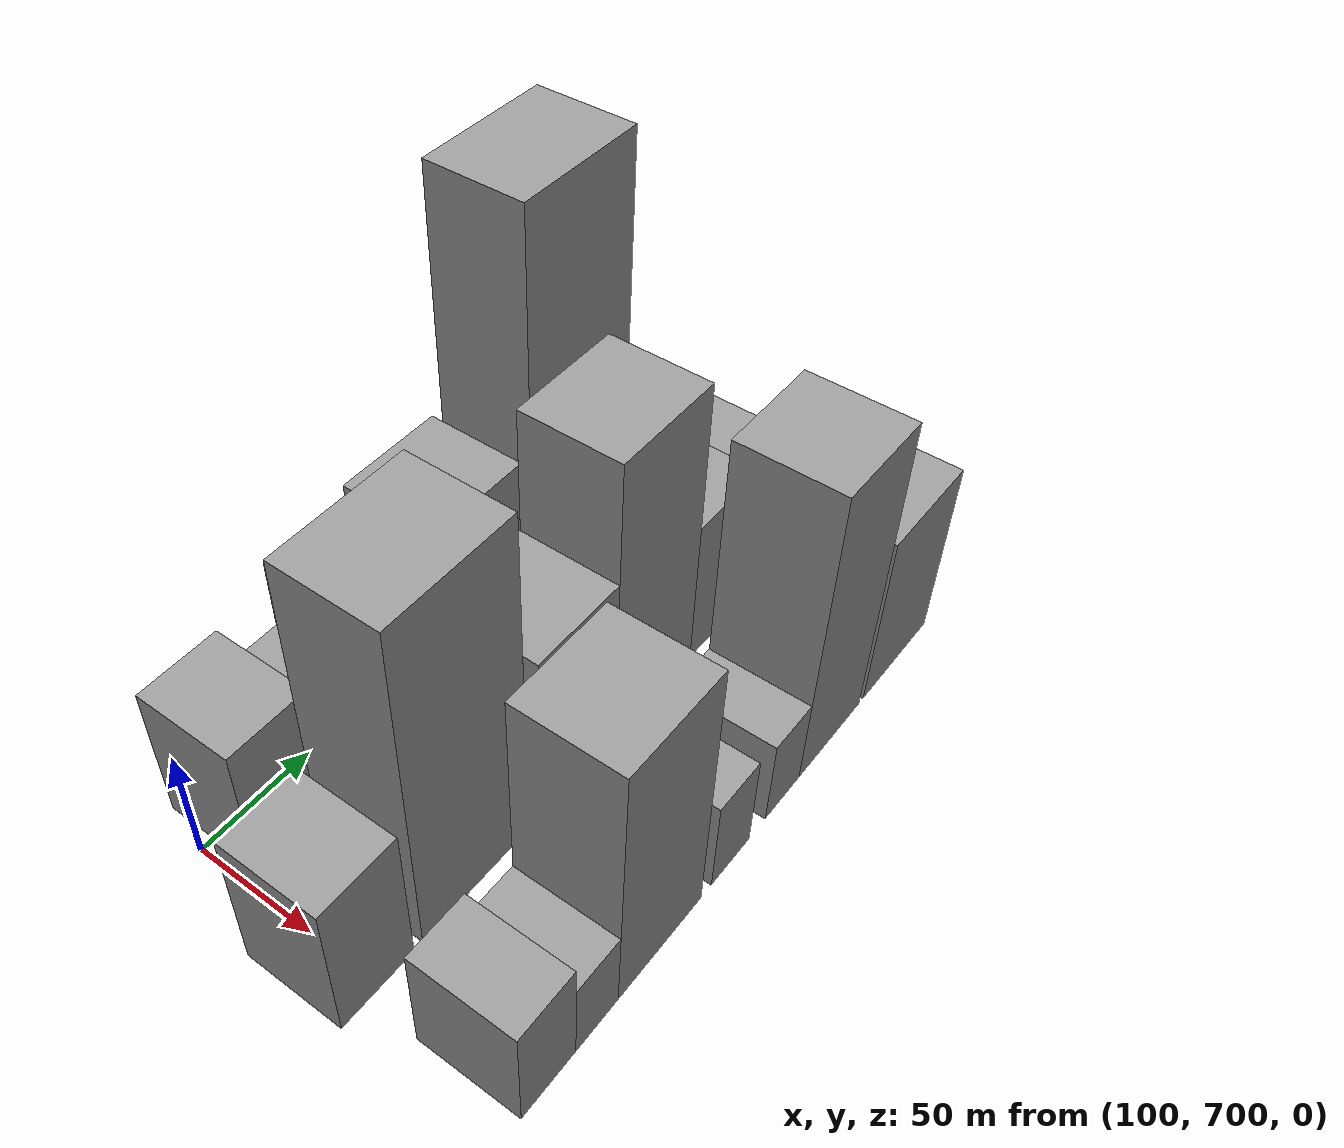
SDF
<sdf version="1.6">
 <world name="default">
  <model name="building_47">
   <static>1</static>
   <pose>100.0000 722.3994 0 0.000000 0.000000 0.000000</pose>
   <link name="link">
    <pose>0 0 30.00 0 0 0</pose>
    <collision name="collision"><geometry><box><size>40.0000 33.6238 60.0000</size></box></geometry></collision>
    <visual name="visual">
     <cast_shadows>0</cast_shadows>
     <geometry><box><size>40.0000 33.6238 60.0000</size></box></geometry>
     <material>
      <script>
       <uri>model://grey_wall/materials/scripts</uri>
       <uri>model://grey_wall/materials/textures</uri>
       <name>vrc/grey_wall</name>
      </script>
     </material>
    </visual>
   </link>
  </model>
  <model name="building_48">
   <static>1</static>
   <pose>100.0000 750.7657 0 0.000000 0.000000 0.000000</pose>
   <link name="link">
    <pose>0 0 21.00 0 0 0</pose>
    <collision name="collision"><geometry><box><size>40.0000 23.1088 42.0000</size></box></geometry></collision>
    <visual name="visual">
     <cast_shadows>0</cast_shadows>
     <geometry><box><size>40.0000 23.1088 42.0000</size></box></geometry>
     <material>
      <script>
       <uri>model://grey_wall/materials/scripts</uri>
       <uri>model://grey_wall/materials/textures</uri>
       <name>vrc/grey_wall</name>
      </script>
     </material>
    </visual>
   </link>
  </model>
  <model name="building_49">
   <static>1</static>
   <pose>100.0000 781.3280 0 0.000000 0.000000 0.000000</pose>
   <link name="link">
    <pose>0 0 36.00 0 0 0</pose>
    <collision name="collision"><geometry><box><size>40.0000 38.0159 72.0000</size></box></geometry></collision>
    <visual name="visual">
     <cast_shadows>0</cast_shadows>
     <geometry><box><size>40.0000 38.0159 72.0000</size></box></geometry>
     <material>
      <script>
       <uri>model://grey_wall/materials/scripts</uri>
       <uri>model://grey_wall/materials/textures</uri>
       <name>vrc/grey_wall</name>
      </script>
     </material>
    </visual>
   </link>
  </model>
  <model name="building_50">
   <static>1</static>
   <pose>100.0000 822.7984 0 0.000000 0.000000 0.000000</pose>
   <link name="link">
    <pose>0 0 39.00 0 0 0</pose>
    <collision name="collision"><geometry><box><size>40.0000 44.9249 78.0000</size></box></geometry></collision>
    <visual name="visual">
     <cast_shadows>0</cast_shadows>
     <geometry><box><size>40.0000 44.9249 78.0000</size></box></geometry>
     <material>
      <script>
       <uri>model://grey_wall/materials/scripts</uri>
       <uri>model://grey_wall/materials/textures</uri>
       <name>vrc/grey_wall</name>
      </script>
     </material>
    </visual>
   </link>
  </model>
  <model name="building_51">
   <static>1</static>
   <pose>100.0000 878.3685 0 0.000000 0.000000 0.000000</pose>
   <link name="link">
    <pose>0 0 88.50 0 0 0</pose>
    <collision name="collision"><geometry><box><size>40.0000 56.2153 177.0000</size></box></geometry></collision>
    <visual name="visual">
     <cast_shadows>0</cast_shadows>
     <geometry><box><size>40.0000 56.2153 177.0000</size></box></geometry>
     <material>
      <script>
       <uri>model://grey_wall/materials/scripts</uri>
       <uri>model://grey_wall/materials/textures</uri>
       <name>vrc/grey_wall</name>
      </script>
     </material>
    </visual>
   </link>
  </model>
  <model name="building_52">
   <static>1</static>
   <pose>100.0000 930.2942 0 0.000000 0.000000 0.000000</pose>
   <link name="link">
    <pose>0 0 25.50 0 0 0</pose>
    <collision name="collision"><geometry><box><size>40.0000 27.6361 51.0000</size></box></geometry></collision>
    <visual name="visual">
     <cast_shadows>0</cast_shadows>
     <geometry><box><size>40.0000 27.6361 51.0000</size></box></geometry>
     <material>
      <script>
       <uri>model://grey_wall/materials/scripts</uri>
       <uri>model://grey_wall/materials/textures</uri>
       <name>vrc/grey_wall</name>
      </script>
     </material>
    </visual>
   </link>
  </model>
  <model name="building_97">
   <static>1</static>
   <pose>160.0000 698.8707 0 0.000000 0.000000 0.000000</pose>
   <link name="link">
    <pose>0 0 31.50 0 0 0</pose>
    <collision name="collision"><geometry><box><size>40.0000 32.6358 63.0000</size></box></geometry></collision>
    <visual name="visual">
     <cast_shadows>0</cast_shadows>
     <geometry><box><size>40.0000 32.6358 63.0000</size></box></geometry>
     <material>
      <script>
       <uri>model://grey_wall/materials/scripts</uri>
       <uri>model://grey_wall/materials/textures</uri>
       <name>vrc/grey_wall</name>
      </script>
     </material>
    </visual>
   </link>
  </model>
  <model name="building_98">
   <static>1</static>
   <pose>160.0000 745.6405 0 0.000000 0.000000 0.000000</pose>
   <link name="link">
    <pose>0 0 73.50 0 0 0</pose>
    <collision name="collision"><geometry><box><size>40.0000 52.9038 147.0000</size></box></geometry></collision>
    <visual name="visual">
     <cast_shadows>0</cast_shadows>
     <geometry><box><size>40.0000 52.9038 147.0000</size></box></geometry>
     <material>
      <script>
       <uri>model://grey_wall/materials/scripts</uri>
       <uri>model://grey_wall/materials/textures</uri>
       <name>vrc/grey_wall</name>
      </script>
     </material>
    </visual>
   </link>
  </model>
  <model name="building_99">
   <static>1</static>
   <pose>160.0000 799.5463 0 0.000000 0.000000 0.000000</pose>
   <link name="link">
    <pose>0 0 39.00 0 0 0</pose>
    <collision name="collision"><geometry><box><size>40.0000 40.9078 78.0000</size></box></geometry></collision>
    <visual name="visual">
     <cast_shadows>0</cast_shadows>
     <geometry><box><size>40.0000 40.9078 78.0000</size></box></geometry>
     <material>
      <script>
       <uri>model://grey_wall/materials/scripts</uri>
       <uri>model://grey_wall/materials/textures</uri>
       <name>vrc/grey_wall</name>
      </script>
     </material>
    </visual>
   </link>
  </model>
  <model name="building_100">
   <static>1</static>
   <pose>160.0000 843.2562 0 0.000000 0.000000 0.000000</pose>
   <link name="link">
    <pose>0 0 64.50 0 0 0</pose>
    <collision name="collision"><geometry><box><size>40.0000 46.5119 129.0000</size></box></geometry></collision>
    <visual name="visual">
     <cast_shadows>0</cast_shadows>
     <geometry><box><size>40.0000 46.5119 129.0000</size></box></geometry>
     <material>
      <script>
       <uri>model://grey_wall/materials/scripts</uri>
       <uri>model://grey_wall/materials/textures</uri>
       <name>vrc/grey_wall</name>
      </script>
     </material>
    </visual>
   </link>
  </model>
  <model name="building_101">
   <static>1</static>
   <pose>160.0000 884.9245 0 0.000000 0.000000 0.000000</pose>
   <link name="link">
    <pose>0 0 33.00 0 0 0</pose>
    <collision name="collision"><geometry><box><size>40.0000 36.8247 66.0000</size></box></geometry></collision>
    <visual name="visual">
     <cast_shadows>0</cast_shadows>
     <geometry><box><size>40.0000 36.8247 66.0000</size></box></geometry>
     <material>
      <script>
       <uri>model://grey_wall/materials/scripts</uri>
       <uri>model://grey_wall/materials/textures</uri>
       <name>vrc/grey_wall</name>
      </script>
     </material>
    </visual>
   </link>
  </model>
  <model name="building_102">
   <static>1</static>
   <pose>160.0000 918.4425 0 0.000000 0.000000 0.000000</pose>
   <link name="link">
    <pose>0 0 30.00 0 0 0</pose>
    <collision name="collision"><geometry><box><size>40.0000 30.2114 60.0000</size></box></geometry></collision>
    <visual name="visual">
     <cast_shadows>0</cast_shadows>
     <geometry><box><size>40.0000 30.2114 60.0000</size></box></geometry>
     <material>
      <script>
       <uri>model://grey_wall/materials/scripts</uri>
       <uri>model://grey_wall/materials/textures</uri>
       <name>vrc/grey_wall</name>
      </script>
     </material>
    </visual>
   </link>
  </model>
  <model name="building_103">
   <static>1</static>
   <pose>160.0000 937.4307 0 0.000000 0.000000 0.000000</pose>
   <link name="link">
    <pose>0 0 9.00 0 0 0</pose>
    <collision name="collision"><geometry><box><size>40.0000 7.7650 18.0000</size></box></geometry></collision>
    <visual name="visual">
     <cast_shadows>0</cast_shadows>
     <geometry><box><size>40.0000 7.7650 18.0000</size></box></geometry>
     <material>
      <script>
       <uri>model://grey_wall/materials/scripts</uri>
       <uri>model://grey_wall/materials/textures</uri>
       <name>vrc/grey_wall</name>
      </script>
     </material>
    </visual>
   </link>
  </model>
  <model name="building_156">
   <static>1</static>
   <pose>220.0000 706.8639 0 0.000000 0.000000 0.000000</pose>
   <link name="link">
    <pose>0 0 24.00 0 0 0</pose>
    <collision name="collision"><geometry><box><size>40.0000 25.7475 48.0000</size></box></geometry></collision>
    <visual name="visual">
     <cast_shadows>0</cast_shadows>
     <geometry><box><size>40.0000 25.7475 48.0000</size></box></geometry>
     <material>
      <script>
       <uri>model://grey_wall/materials/scripts</uri>
       <uri>model://grey_wall/materials/textures</uri>
       <name>vrc/grey_wall</name>
      </script>
     </material>
    </visual>
   </link>
  </model>
  <model name="building_157">
   <static>1</static>
   <pose>220.0000 730.2820 0 0.000000 0.000000 0.000000</pose>
   <link name="link">
    <pose>0 0 18.00 0 0 0</pose>
    <collision name="collision"><geometry><box><size>40.0000 21.0887 36.0000</size></box></geometry></collision>
    <visual name="visual">
     <cast_shadows>0</cast_shadows>
     <geometry><box><size>40.0000 21.0887 36.0000</size></box></geometry>
     <material>
      <script>
       <uri>model://grey_wall/materials/scripts</uri>
       <uri>model://grey_wall/materials/textures</uri>
       <name>vrc/grey_wall</name>
      </script>
     </material>
    </visual>
   </link>
  </model>
  <model name="building_158">
   <static>1</static>
   <pose>220.0000 763.1546 0 0.000000 0.000000 0.000000</pose>
   <link name="link">
    <pose>0 0 57.00 0 0 0</pose>
    <collision name="collision"><geometry><box><size>40.0000 44.6565 114.0000</size></box></geometry></collision>
    <visual name="visual">
     <cast_shadows>0</cast_shadows>
     <geometry><box><size>40.0000 44.6565 114.0000</size></box></geometry>
     <material>
      <script>
       <uri>model://grey_wall/materials/scripts</uri>
       <uri>model://grey_wall/materials/textures</uri>
       <name>vrc/grey_wall</name>
      </script>
     </material>
    </visual>
   </link>
  </model>
  <model name="building_159">
   <static>1</static>
   <pose>220.0000 802.5805 0 0.000000 0.000000 0.000000</pose>
   <link name="link">
    <pose>0 0 21.00 0 0 0</pose>
    <collision name="collision"><geometry><box><size>40.0000 22.1954 42.0000</size></box></geometry></collision>
    <visual name="visual">
     <cast_shadows>0</cast_shadows>
     <geometry><box><size>40.0000 22.1954 42.0000</size></box></geometry>
     <material>
      <script>
       <uri>model://grey_wall/materials/scripts</uri>
       <uri>model://grey_wall/materials/textures</uri>
       <name>vrc/grey_wall</name>
      </script>
     </material>
    </visual>
   </link>
  </model>
  <model name="building_160">
   <static>1</static>
   <pose>220.0000 834.3109 0 0.000000 0.000000 0.000000</pose>
   <link name="link">
    <pose>0 0 19.50 0 0 0</pose>
    <collision name="collision"><geometry><box><size>40.0000 21.2653 39.0000</size></box></geometry></collision>
    <visual name="visual">
     <cast_shadows>0</cast_shadows>
     <geometry><box><size>40.0000 21.2653 39.0000</size></box></geometry>
     <material>
      <script>
       <uri>model://grey_wall/materials/scripts</uri>
       <uri>model://grey_wall/materials/textures</uri>
       <name>vrc/grey_wall</name>
      </script>
     </material>
    </visual>
   </link>
  </model>
  <model name="building_161">
   <static>1</static>
   <pose>220.0000 865.2073 0 0.000000 0.000000 0.000000</pose>
   <link name="link">
    <pose>0 0 66.00 0 0 0</pose>
    <collision name="collision"><geometry><box><size>40.0000 40.5275 132.0000</size></box></geometry></collision>
    <visual name="visual">
     <cast_shadows>0</cast_shadows>
     <geometry><box><size>40.0000 40.5275 132.0000</size></box></geometry>
     <material>
      <script>
       <uri>model://grey_wall/materials/scripts</uri>
       <uri>model://grey_wall/materials/textures</uri>
       <name>vrc/grey_wall</name>
      </script>
     </material>
    </visual>
   </link>
  </model>
  <model name="building_162">
   <static>1</static>
   <pose>220.0000 911.0521 0 0.000000 0.000000 0.000000</pose>
   <link name="link">
    <pose>0 0 39.00 0 0 0</pose>
    <collision name="collision"><geometry><box><size>40.0000 45.1621 78.0000</size></box></geometry></collision>
    <visual name="visual">
     <cast_shadows>0</cast_shadows>
     <geometry><box><size>40.0000 45.1621 78.0000</size></box></geometry>
     <material>
      <script>
       <uri>model://grey_wall/materials/scripts</uri>
       <uri>model://grey_wall/materials/textures</uri>
       <name>vrc/grey_wall</name>
      </script>
     </material>
    </visual>
   </link>
  </model>
 </world>
</sdf>
